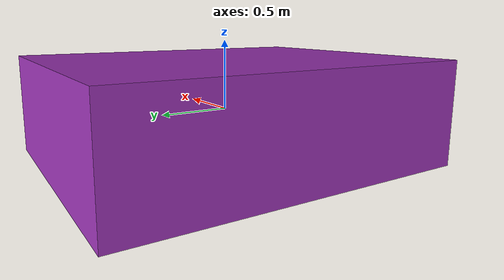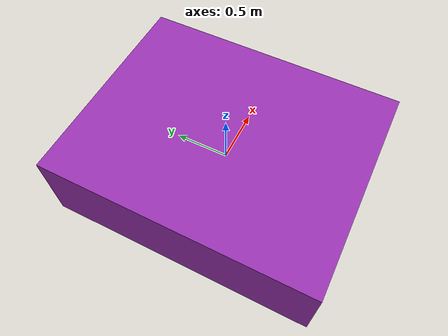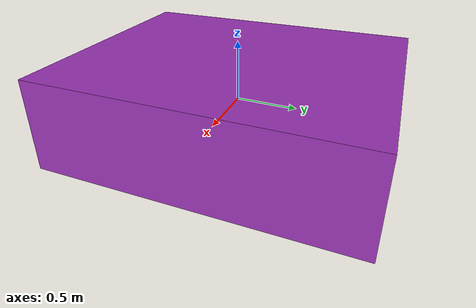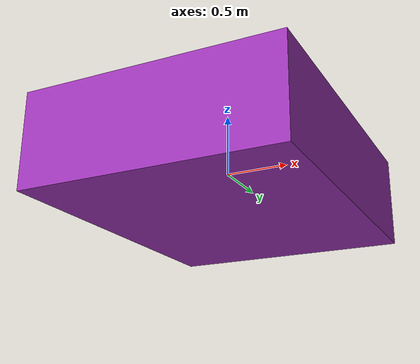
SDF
<?xml version="1.0" encoding="UTF-8"?>
<sdf version='1.4'>
  <model name="baggage_E">
      <static>true</static>
      <link name="link">
         <collision name="collision">
            <geometry>
               <box>
                  <size>2 2.5 0.75</size>
               </box>
            </geometry>
         </collision>
         <visual name="visual">
            <cast_shadows>false</cast_shadows>
            <geometry>
               <box>
                  <size>2 2.5 0.75</size>
               </box>
            </geometry>
            <material>
               <script>
                  <uri>file://media/materials/scripts/gazebo.material</uri>
                  <name>Gazebo/Purple</name>
               </script>
            </material>
         </visual>
      </link>
  </model>
</sdf>
